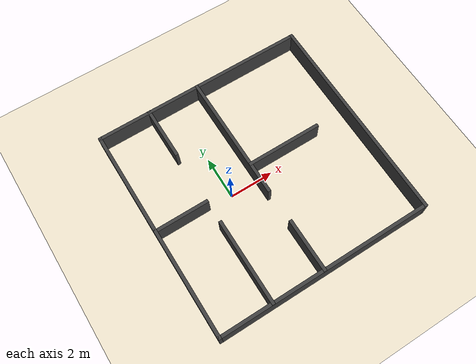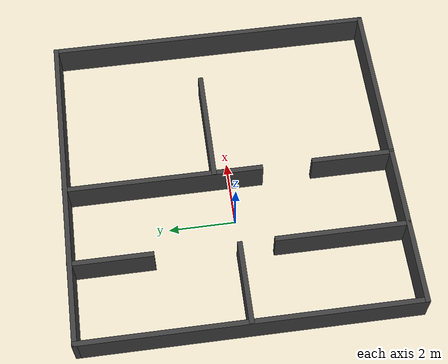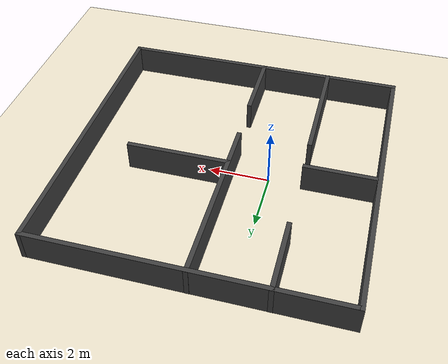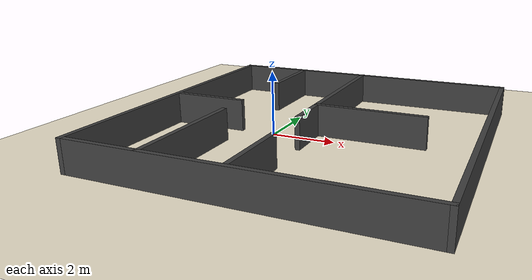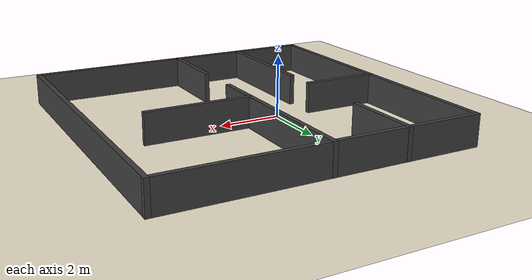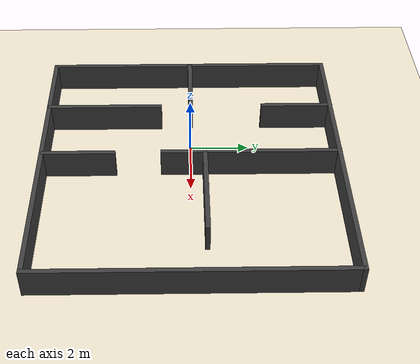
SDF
<?xml version="1.0" ?>

<sdf version="1.8">
  <world name="gazebo_world">
    <physics name='1ms' type='ignored'>
      <max_step_size>0.001</max_step_size>
      <real_time_factor>1</real_time_factor>
      <real_time_update_rate>1000</real_time_update_rate>
    </physics>
    <plugin name='ignition::gazebo::systems::Physics' filename='ignition-gazebo-physics-system'/>
    <plugin name='ignition::gazebo::systems::UserCommands' filename='ignition-gazebo-user-commands-system'/>
    <plugin name='ignition::gazebo::systems::SceneBroadcaster' filename='ignition-gazebo-scene-broadcaster-system'/>
    <plugin filename="ignition-gazebo-sensors-system" name="ignition::gazebo::systems::Sensors">
      <render_engine>ogre2</render_engine>
    </plugin>

    <plugin filename="libignition-gazebo-contact-system.so" name="ignition::gazebo::systems::Contact">
    </plugin>
    <scene>
      <ambient>1.0 1.0 1.0</ambient>
      <background>0.8 0.8 0.8</background>
    </scene>

    <light type="directional" name="sun">
      <cast_shadows>true</cast_shadows>
      <pose>0 0 10 0 0 0</pose>
      <diffuse>0.8 0.8 0.8 1</diffuse>
      <specular>0.2 0.2 0.2 1</specular>
      <attenuation>
        <range>1000</range>
        <constant>0.9</constant>
        <linear>0.01</linear>
        <quadratic>0.001</quadratic>
      </attenuation>
      <direction>-0.5 0.1 -0.9</direction>
    </light>

    <model name="ground_plane">
      <static>true</static>
      <link name="link">
        <collision name="collision">
          <geometry>
            <plane>
              <normal>0 0 1</normal>
              <size>20 20</size>
            </plane>
          </geometry>
        </collision>
        <visual name="visual">
          <geometry>
            <plane>
              <normal>0 0 1</normal>
              <size>20 20</size>
            </plane>
          </geometry>
          <material>
            <ambient>0.94 0.90 0.81 1</ambient>
            <diffuse>0.94 0.90 0.81 1</diffuse>
            <specular>1 1 1 0</specular>
          </material>
        </visual>
      </link>
    </model>

    <include>
      <uri>room_with_walls</uri>
      <pose>1.5 0.0 0.0 0 0 0</pose>
  </include>

  </world>
</sdf>

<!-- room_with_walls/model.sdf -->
<sdf version='1.6'>
  <model name='room_with_walls'>
    <pose >-5.11916 3.33552 0 0 0 0</pose>
    <link name='Wall_1'>
      <collision name='Wall_1_Collision'>
        <geometry>
          <box>
            <size>10 0.15 1.0</size>
          </box>
        </geometry>
        <pose >0 0 0.5 0 -0 0</pose>
      </collision>
      <visual name='Wall_1_Visual'>
        <pose >0 0 0.5 0 -0 0</pose>
        <geometry>
          <box>
            <size>10 0.15 1.0</size>
          </box>
        </geometry>
        <material>
          <ambient>0.25 0.25 0.25 1.0</ambient>
          <diffuse>0.25 0.25 0.25 1.0</diffuse>
          <specular>0.1 0.1 0.1 1.0</specular>
          <emissive>0.0 0.0 0.0 1.0</emissive>
        </material>
        <meta>
          <layer>0</layer>
        </meta>
      </visual>
      <pose >-0.119159 -4.92736 0 0 -0 0</pose>
    </link>
    <link name='Wall_11'>
      <collision name='Wall_11_Collision'>
        <geometry>
          <box>
            <size>2.5 0.15 1.0</size>
          </box>
        </geometry>
        <pose >0 0 0.5 0 -0 0</pose>
      </collision>
      <visual name='Wall_11_Visual'>
        <pose >0 0 0.5 0 -0 0</pose>
        <geometry>
          <box>
            <size>2.5 0.15 1.0</size>
          </box>
        </geometry>
        <material>
          <ambient>0.25 0.25 0.25 1.0</ambient>
          <diffuse>0.25 0.25 0.25 1.0</diffuse>
          <specular>0.1 0.1 0.1 1.0</specular>
          <emissive>0.0 0.0 0.0 1.0</emissive>
        </material>
        <meta>
          <layer>0</layer>
        </meta>
      </visual>
      <pose >-2.64666 3.75236 0 0 -0 -1.5708</pose>
    </link>
    <link name='Wall_16'>
      <collision name='Wall_16_Collision'>
        <geometry>
          <box>
            <size>2.5 0.15 1.0</size>
          </box>
        </geometry>
        <pose >0 0 0.5 0 -0 0</pose>
      </collision>
      <visual name='Wall_16_Visual'>
        <pose >0 0 0.5 0 -0 0</pose>
        <geometry>
          <box>
            <size>2.5 0.15 1.0</size>
          </box>
        </geometry>
        <material>
          <ambient>0.25 0.25 0.25 1.0</ambient>
          <diffuse>0.25 0.25 0.25 1.0</diffuse>
          <specular>0.1 0.1 0.1 1.0</specular>
          <emissive>0.0 0.0 0.0 1.0</emissive>
        </material>
        <meta>
          <layer>0</layer>
        </meta>
      </visual>
      <pose >-3.84066 0.028362 0 0 -0 0</pose>
    </link>
    <link name='Wall_18'>
      <collision name='Wall_18_Collision'>
        <geometry>
          <box>
            <size>4 0.15 1.0</size>
          </box>
        </geometry>
        <pose >0 0 0.5 0 -0 0</pose>
      </collision>
      <visual name='Wall_18_Visual'>
        <pose >0 0 0.5 0 -0 0</pose>
        <geometry>
          <box>
            <size>4 0.15 1.0</size>
          </box>
        </geometry>
        <material>
          <ambient>0.25 0.25 0.25 1.0</ambient>
          <diffuse>0.25 0.25 0.25 1.0</diffuse>
          <specular>0.1 0.1 0.1 1.0</specular>
          <emissive>0.0 0.0 0.0 1.0</emissive>
        </material>
        <meta>
          <layer>0</layer>
        </meta>
      </visual>
      <pose >-2.63516 -2.99164 0 0 -0 1.5708</pose>
    </link>
    <link name='Wall_2'>
      <collision name='Wall_2_Collision'>
        <geometry>
          <box>
            <size>10 0.15 1.0</size>
          </box>
        </geometry>
        <pose >0 0 0.5 0 -0 0</pose>
      </collision>
      <visual name='Wall_2_Visual'>
        <pose >0 0 0.5 0 -0 0</pose>
        <geometry>
          <box>
            <size>10 0.15 1.0</size>
          </box>
        </geometry>
        <material>
          <ambient>0.25 0.25 0.25 1.0</ambient>
          <diffuse>0.25 0.25 0.25 1.0</diffuse>
          <specular>0.1 0.1 0.1 1.0</specular>
          <emissive>0.0 0.0 0.0 1.0</emissive>
        </material>
        <meta>
          <layer>0</layer>
        </meta>
      </visual>
      <pose >4.80584 -0.002362 0 0 -0 1.5708</pose>
    </link>
    <link name='Wall_24'>
      <collision name='Wall_24_Collision'>
        <geometry>
          <box>
            <size>6 0.15 1.0</size>
          </box>
        </geometry>
        <pose >0 0 0.5 0 -0 0</pose>
      </collision>
      <visual name='Wall_24_Visual'>
        <pose >0 0 0.5 0 -0 0</pose>
        <geometry>
          <box>
            <size>6 0.15 1.0</size>
          </box>
        </geometry>
        <material>
          <ambient>0.25 0.25 0.25 1.0</ambient>
          <diffuse>0.25 0.25 0.25 1.0</diffuse>
          <specular>0.1 0.1 0.1 1.0</specular>
          <emissive>0.0 0.0 0.0 1.0</emissive>
        </material>
        <meta>
          <layer>0</layer>
        </meta>
      </visual>
      <pose >-0.243157 2.00236 0 0 -0 -1.5708</pose>
    </link>
    <link name='Wall_28'>
      <collision name='Wall_28_Collision'>
        <geometry>
          <box>
            <size>2.5 0.15 1.0</size>
          </box>
        </geometry>
        <pose >0 0 0.5 0 -0 0</pose>
      </collision>
      <visual name='Wall_28_Visual'>
        <pose >0 0 0.5 0 -0 0</pose>
        <geometry>
          <box>
            <size>2.5 0.15 1.0</size>
          </box>
        </geometry>
        <material>
          <ambient>0.25 0.25 0.25 1.0</ambient>
          <diffuse>0.25 0.25 0.25 1.0</diffuse>
          <specular>0.1 0.1 0.1 1.0</specular>
          <emissive>0.0 0.0 0.0 1.0</emissive>
        </material>
        <meta>
          <layer>0</layer>
        </meta>
      </visual>
      <pose >-0.220157 -3.74164 0 0 -0 1.5708</pose>
    </link>
    <link name='Wall_3'>
      <collision name='Wall_3_Collision'>
        <geometry>
          <box>
            <size>10 0.15 1.0</size>
          </box>
        </geometry>
        <pose >0 0 0.5 0 -0 0</pose>
      </collision>
      <visual name='Wall_3_Visual'>
        <pose >0 0 0.5 0 -0 0</pose>
        <geometry>
          <box>
            <size>10 0.15 1.0</size>
          </box>
        </geometry>
        <material>
          <ambient>0.25 0.25 0.25 1.0</ambient>
          <diffuse>0.25 0.25 0.25 1.0</diffuse>
          <specular>0.1 0.1 0.1 1.0</specular>
          <emissive>0.0 0.0 0.0 1.0</emissive>
        </material>
        <meta>
          <layer>0</layer>
        </meta>
      </visual>
      <pose >-0.119159 4.92264 0 0 -0 3.14159</pose>
    </link>
    <link name='Wall_36'>
      <collision name='Wall_36_Collision'>
        <geometry>
          <box>
            <size>3.5 0.15 1.0</size>
          </box>
        </geometry>
        <pose >0 0 0.5 0 -0 0</pose>
      </collision>
      <visual name='Wall_36_Visual'>
        <pose >0 0 0.5 0 -0 0</pose>
        <geometry>
          <box>
            <size>3.5 0.15 1.0</size>
          </box>
        </geometry>
        <material>
          <ambient>0.25 0.25 0.25 1.0</ambient>
          <diffuse>0.25 0.25 0.25 1.0</diffuse>
          <specular>0.1 0.1 0.1 1.0</specular>
          <emissive>0.0 0.0 0.0 1.0</emissive>
        </material>
        <meta>
          <layer>0</layer>
        </meta>
      </visual>
      <pose >1.44334 0.476862 0 0 -0 0</pose>
    </link>
    <link name='Wall_4'>
      <collision name='Wall_4_Collision'>
        <geometry>
          <box>
            <size>10 0.15 1.0</size>
          </box>
        </geometry>
        <pose >0 0 0.5 0 -0 0</pose>
      </collision>
      <visual name='Wall_4_Visual'>
        <pose >0 0 0.5 0 -0 0</pose>
        <geometry>
          <box>
            <size>10 0.15 1.0</size>
          </box>
        </geometry>
        <material>
          <ambient>0.25 0.25 0.25 1.0</ambient>
          <diffuse>0.25 0.25 0.25 1.0</diffuse>
          <specular>0.1 0.1 0.1 1.0</specular>
          <emissive>0.0 0.0 0.0 1.0</emissive>
        </material>
        <meta>
          <layer>0</layer>
        </meta>
      </visual>
      <pose >-5.04416 -0.002362 0 0 -0 -1.5708</pose>
    </link>
    <static>1</static>
  </model>
</sdf>
